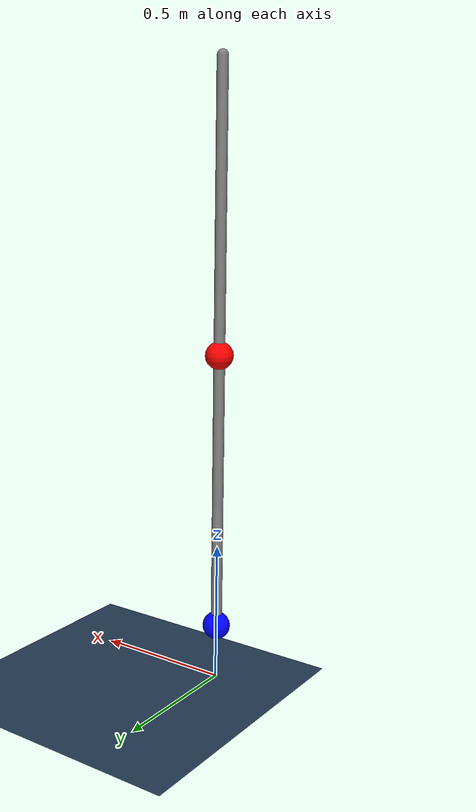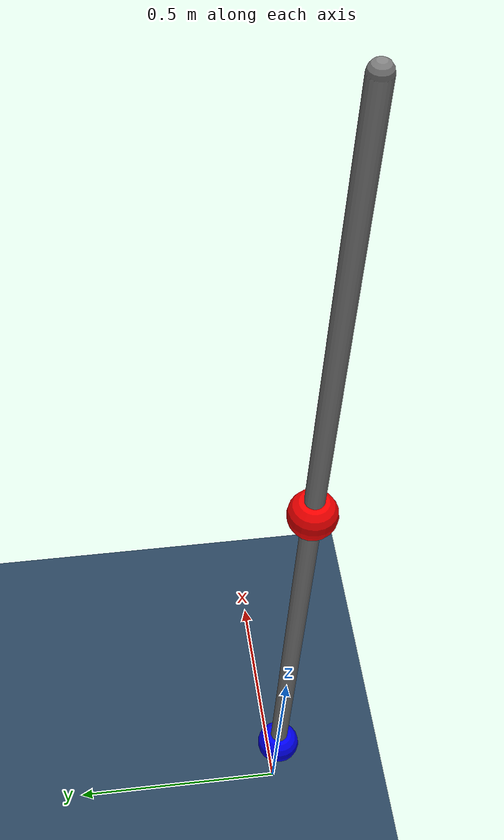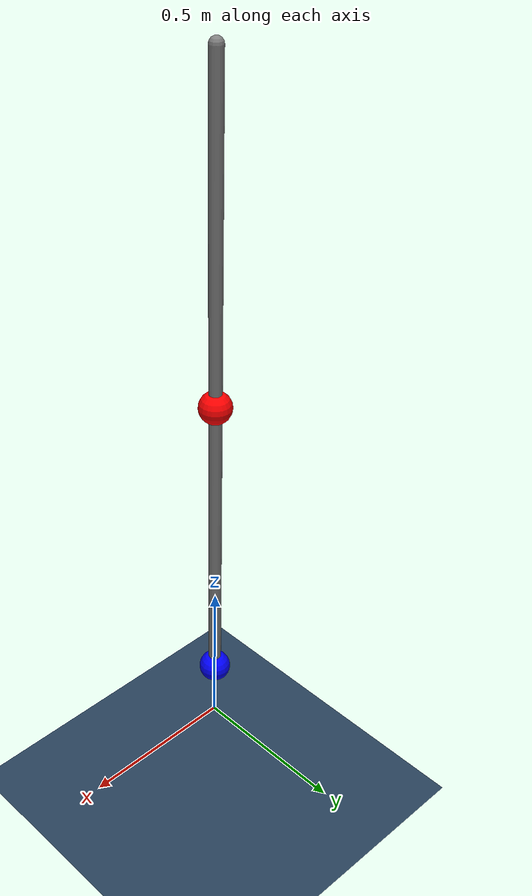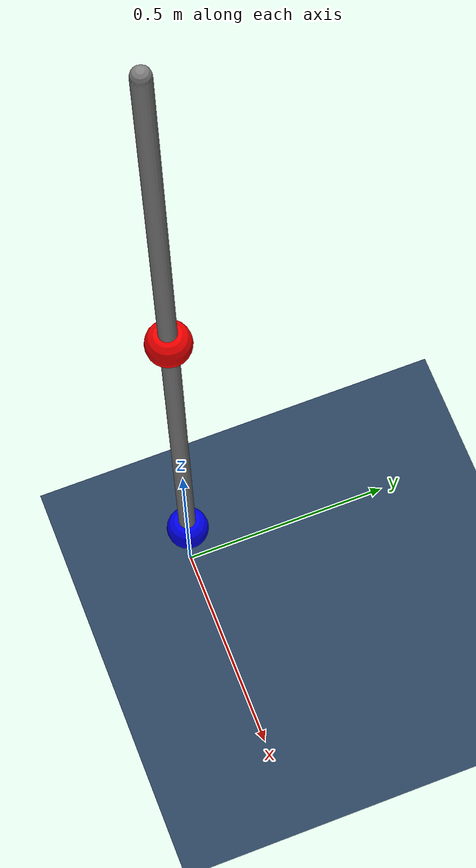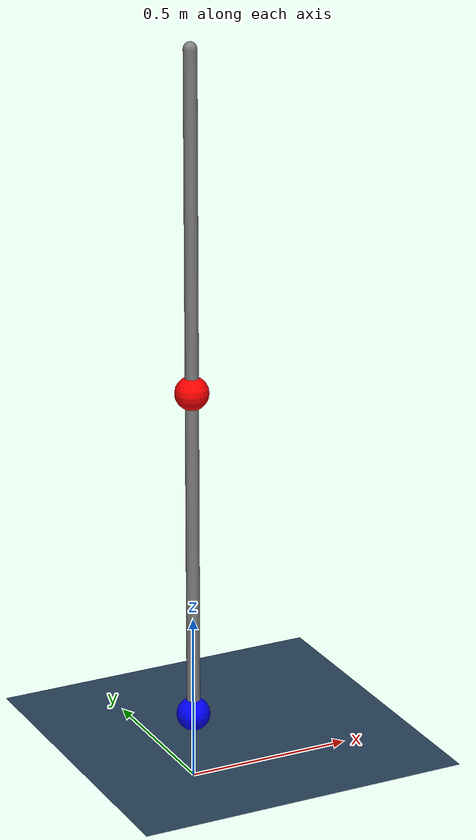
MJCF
<mujoco model="double_pendulum">

    <!-- experimental -->
    <option timestep="0.01" gravity="0 0 -9.81"/>

    <asset>
        <texture type="skybox" builtin="gradient" rgb1="0.6 0.7 0.9" rgb2="0.3 0.3 0.4" width="512" height="3072"/>
        <texture type="2d" name="groundplane" builtin="checker" mark="edge" rgb1="0.2 0.3 0.4" rgb2="0.1 0.2 0.3" markrgb="0.8 0.8 0.8" width="300" height="300"/>
        <material name="groundplane" texture="groundplane" texuniform="true" texrepeat="5 5" reflectance="0.2"/>
    </asset>

    <worldbody>
        <light name="global_light" directional="true" diffuse="1 1 1" specular="0.3 0.3 0.3" castshadow="false"/>
        <light name="fill_light_0" pos="-5 0 10" dir="0 0 -1" directional="false" diffuse="1 1 1" specular="0.2 0.2 0.2"/>
        <light name="fill_light_1" pos="0 0 10" dir="0 0 -1" directional="false" diffuse="1 1 1" specular="0.2 0.2 0.2"/>
        <light name="fill_light_2" pos="5 0 10" dir="0 0 -1" directional="false" diffuse="1 1 1" specular="0.2 0.2 0.2"/>

        <geom name="floor" pos="0 0 0" size="0 0 0.05" type="plane" material="groundplane"/>

        <camera name="fixed" pos="0 -6 2.2" xyaxes="1 0 0 0 0 1"/>

        <!-- First link -->
        <body name="first_link" pos="0 0 2.2">
            <joint name="hinge1" type="hinge" axis="0 1 0" pos="0 0 0" damping="0.5"/>
            <geom name="rod1" type="capsule" fromto="0 0 0 0 0 -1" size="0.02" mass="1"/>
            <geom name="bob1" type="sphere" pos="0 0 -1" size="0.05" rgba="1 0 0 1" mass="0"/>

            <!-- Second link attached to the first -->
            <body name="second_link" pos="0 0 -1">
                <joint name="hinge2" type="hinge" axis="0 1 0" pos="0 0 0" damping="0.5"/>
                <geom name="rod2" type="capsule" fromto="0 0 0 0 0 -1" size="0.02" mass="1"/>
                <geom name="bob2" type="sphere" pos="0 0 -1" size="0.05" rgba="0 0 1 1" mass="0"/>
            </body>
        </body>
    </worldbody>

    <actuator>
        <!-- Optional: torque actuator to drive the pendulum -->
        <motor joint="hinge1" ctrlrange="-1 1" gear="6"/>
    </actuator>
</mujoco>
